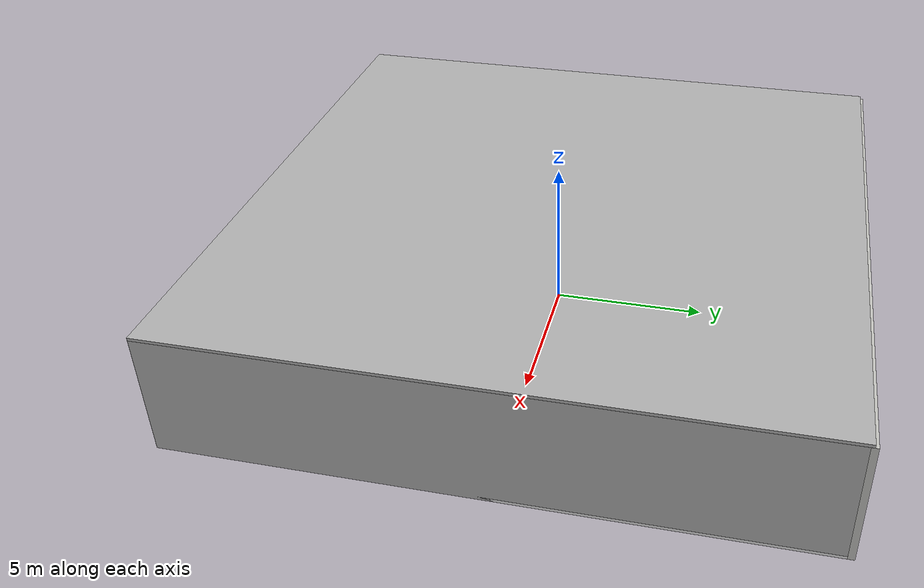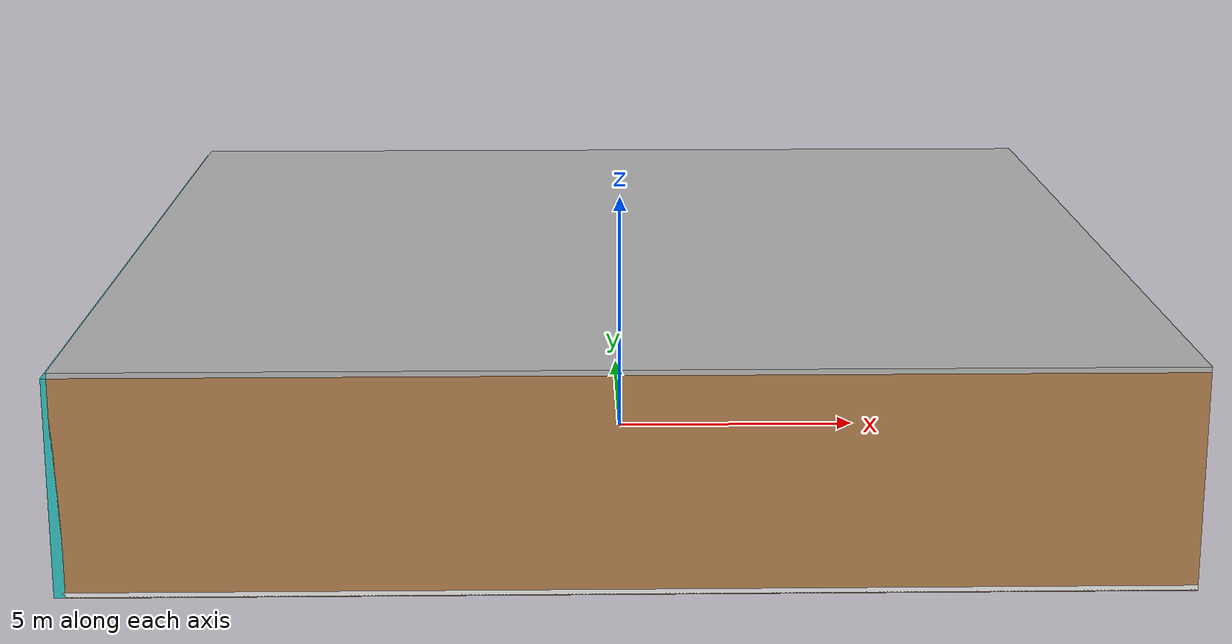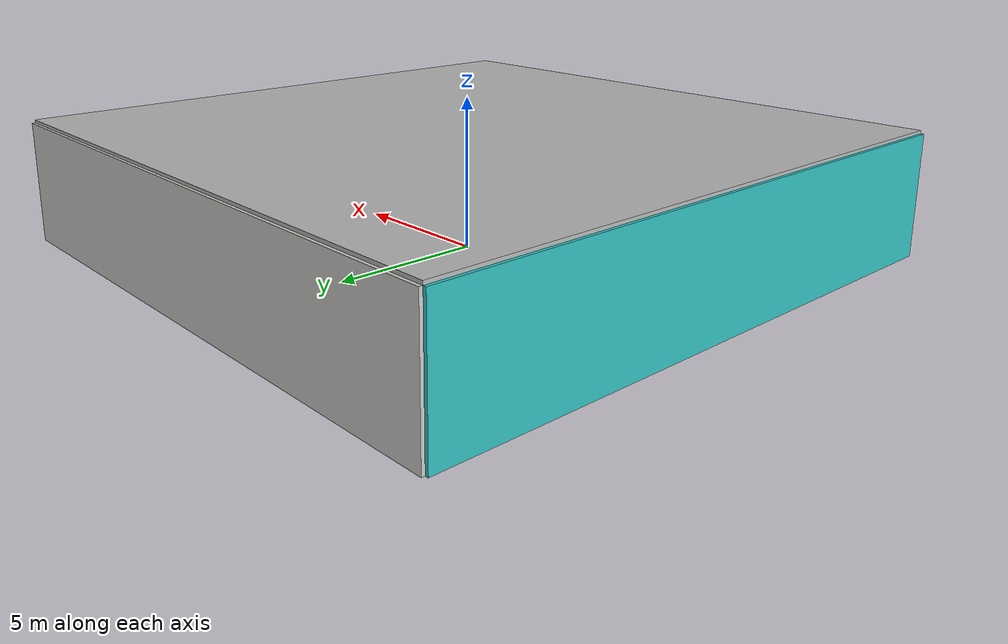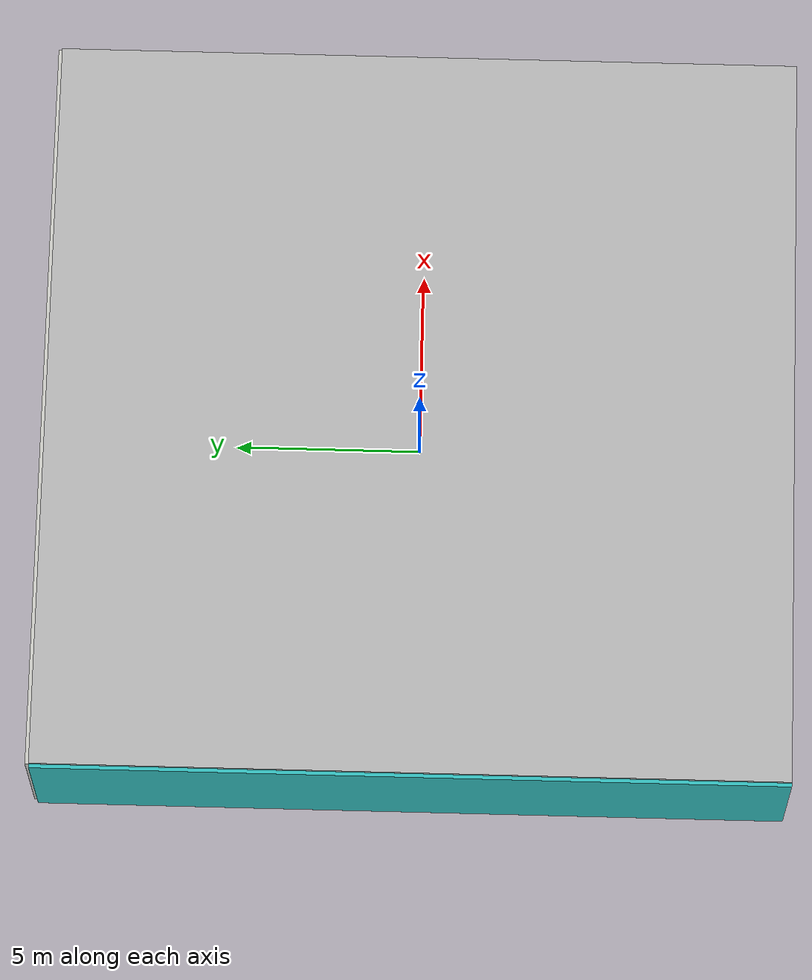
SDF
<sdf version="1.4">
 <world name="default">
  <physics type="ode">
   <max_step_size>0.001</max_step_size>
   <real_time_factor>1</real_time_factor>
   <real_time_update_rate>1000</real_time_update_rate>
   <gravity>0 0 -9.8</gravity>
  </physics>
  <scene><ambient>0.4 0.4 0.4 1</ambient><background>0.7 0.7 0.7 1</background><shadows>1</shadows></scene>
  <model name="Surrounding">
   <static>1</static>
   <link name="Ceiling">
    <collision name="Ceiling_Collision"><geometry><box><size>20 20 0.1</size></box></geometry></collision>
    <visual name="Ceiling_Visual">
     <geometry><box><size>20 20 0.1</size></box></geometry>
     <material>
      <script><uri>file://media/materials/scripts/gazebo.material</uri><name>Gazebo/PioneerBody</name></script>
     </material>
    </visual>
    <pose>0 0 4.05 0 0 0</pose>
   </link>
   <link name="Wall_South">
    <collision name="Wall_South_Collision">
     <geometry><box><size>20 0 4</size></box></geometry>
     <pose>0 0 2 0 -0 0</pose>
    </collision>
    <visual name="Wall_South_Visual">
     <pose>0 0 2 0 -0 0</pose>
     <geometry><box><size>20 0 4</size></box></geometry>
     <material>
      <script><uri>file://media/materials/scripts/gazebo.material</uri><name>Gazebo/WoodFloor</name></script>
     </material>
    </visual>
    <velocity_decay><linear>0</linear><angular>0</angular></velocity_decay>
    <pose>0 -10 0 0 -0 0</pose>
   </link>
   <link name="Wall_East">
    <collision name="Wall_21_Collision">
     <geometry><box><size>20 0 4</size></box></geometry>
     <pose>0 0 2 0 -0 0</pose>
    </collision>
    <visual name="Wall_21_Visual">
     <pose>0 0 2 0 -0 0</pose>
     <geometry><box><size>20 0 4</size></box></geometry>
     <material>
      <script><uri>file://media/materials/scripts/gazebo.material</uri><name>Gazebo/PioneerBody</name></script>
     </material>
    </visual>
    <velocity_decay><linear>0</linear><angular>0</angular></velocity_decay>
    <pose>10 0 0 0 -0 1.5708</pose>
   </link>
   <link name="Wall_North">
    <collision name="Wall_22_Collision">
     <geometry><box><size>20 0.2 4</size></box></geometry>
     <pose>0 0 2 0 -0 0</pose>
    </collision>
    <visual name="Wall_22_Visual">
     <pose>0 0 2 0 -0 0</pose>
     <geometry><box><size>20 0.2 4</size></box></geometry>
     <material>
      <script><uri>file://media/materials/scripts/gazebo.material</uri><name>Gazebo/CeilingTiled</name></script>
     </material>
    </visual>
    <velocity_decay><linear>0</linear><angular>0</angular></velocity_decay>
    <pose>0 10 0 0 -0 0</pose>
   </link>
   <link name="Wall_West">
    <collision name="Wall_23_Collision">
     <geometry><box><size>20 0.2 4</size></box></geometry>
     <pose>0 0 2 0 -0 0</pose>
    </collision>
    <visual name="Wall_23_Visual">
     <pose>0 0 2 0 -0 0</pose>
     <geometry><box><size>20 0.2 4</size></box></geometry>
     <material>
      <script><uri>file://media/materials/scripts/gazebo.material</uri><name>Gazebo/Turquoise</name></script>
     </material>
    </visual>
    <velocity_decay><linear>0</linear><angular>0</angular></velocity_decay>
    <pose>-10 0 0 0 0 -1.5708</pose>
   </link>
   <link name="Ground_link">
    <collision name="collision">
     <pose>0 0 .05 0 -0 0</pose>
     <geometry><box><size>20 20 0.1</size></box></geometry>
    </collision>
    <visual name="visual">
     <pose>0 0 .05 0 -0 0</pose>
     <geometry><box><size>20 20 0.1</size></box></geometry>
     <material>
      <script><uri>file://media/materials/scripts/gazebo.material</uri><name>Gazebo/WhiteGlow</name></script>
     </material>
    </visual>
   </link>
   <static>1</static>
  </model>
  <spherical_coordinates>
   <surface_model>EARTH_WGS84</surface_model>
   <latitude_deg>0</latitude_deg>
   <longitude_deg>0</longitude_deg>
   <elevation>0</elevation>
   <heading_deg>0</heading_deg>
  </spherical_coordinates>
  <light name="lightball_0" type="diffuse">
   <diffuse>0.8 0.8 0.8 1</diffuse>
   <specular>0.2 0.2 0.2 1</specular>
   <attenuation>
    <range>100</range>
    <constant>0.7</constant>
    <linear>0.01</linear>
    <quadratic>0.001</quadratic>
   </attenuation>
   <direction>-0.5 0.1 -0.9</direction>
   <pose>-5.63276798236 6.36358801623 2.59024959872 0 0 0</pose>
  </light>
  <light name="lightball_1" type="diffuse">
   <diffuse>0.8 0.8 0.8 1</diffuse>
   <specular>0.2 0.2 0.2 1</specular>
   <attenuation>
    <range>100</range>
    <constant>0.7</constant>
    <linear>0.01</linear>
    <quadratic>0.001</quadratic>
   </attenuation>
   <direction>-0.5 0.1 -0.9</direction>
   <pose>7.15696000875 -2.87356384565 1.66200663805 0 0 0</pose>
  </light>
  <light name="lightball_2" type="diffuse">
   <diffuse>0.8 0.8 0.8 1</diffuse>
   <specular>0.2 0.2 0.2 1</specular>
   <attenuation>
    <range>100</range>
    <constant>0.7</constant>
    <linear>0.01</linear>
    <quadratic>0.001</quadratic>
   </attenuation>
   <direction>-0.5 0.1 -0.9</direction>
   <pose>-9.81456100655 -4.94211172788 1.95826953814 0 0 0</pose>
  </light>
  <light name="lightball_3" type="diffuse">
   <diffuse>0.8 0.8 0.8 1</diffuse>
   <specular>0.2 0.2 0.2 1</specular>
   <attenuation>
    <range>100</range>
    <constant>0.7</constant>
    <linear>0.01</linear>
    <quadratic>0.001</quadratic>
   </attenuation>
   <direction>-0.5 0.1 -0.9</direction>
   <pose>7.45028137276 -4.96064820122 2.53405126836 0 0 0</pose>
  </light>
  <light name="lightball_4" type="diffuse">
   <diffuse>0.8 0.8 0.8 1</diffuse>
   <specular>0.2 0.2 0.2 1</specular>
   <attenuation>
    <range>100</range>
    <constant>0.7</constant>
    <linear>0.01</linear>
    <quadratic>0.001</quadratic>
   </attenuation>
   <direction>-0.5 0.1 -0.9</direction>
   <pose>6.97756132596 6.14783710898 3.31842389476 0 0 0</pose>
  </light>
  <light name="lightball_5" type="diffuse">
   <diffuse>0.8 0.8 0.8 1</diffuse>
   <specular>0.2 0.2 0.2 1</specular>
   <attenuation>
    <range>100</range>
    <constant>0.7</constant>
    <linear>0.01</linear>
    <quadratic>0.001</quadratic>
   </attenuation>
   <direction>-0.5 0.1 -0.9</direction>
   <pose>9.68747051667 -0.373060444764 1.10839783649 0 0 0</pose>
  </light>
  <light name="lightball_6" type="diffuse">
   <diffuse>0.8 0.8 0.8 1</diffuse>
   <specular>0.2 0.2 0.2 1</specular>
   <attenuation>
    <range>100</range>
    <constant>0.7</constant>
    <linear>0.01</linear>
    <quadratic>0.001</quadratic>
   </attenuation>
   <direction>-0.5 0.1 -0.9</direction>
   <pose>5.18457254812 -9.16450720131 0.84670958037 0 0 0</pose>
  </light>
  <light name="lightball_7" type="diffuse">
   <diffuse>0.8 0.8 0.8 1</diffuse>
   <specular>0.2 0.2 0.2 1</specular>
   <attenuation>
    <range>100</range>
    <constant>0.7</constant>
    <linear>0.01</linear>
    <quadratic>0.001</quadratic>
   </attenuation>
   <direction>-0.5 0.1 -0.9</direction>
   <pose>-2.94594647666 -7.50589863623 2.61453885554 0 0 0</pose>
  </light>
  <include>
   <uri>model://construction_cone</uri>
   <pose>-6.78457263685 -4.5731189293 0 0 0 0.442062608102</pose>
  </include>
  <include><uri>model://table</uri><pose>-4.14618652095 6.86435084314 0 0 0 1.17953404531</pose></include>
  <include><uri>model://cabinet</uri><pose>0.501081173988 3.55515845708 0 0 0 0.463763402459</pose></include>
  <include>
   <uri>model://textured_shapes</uri>
   <pose>7.62509129436 -1.43661373254 0 0 0 0.626514262836</pose>
  </include>
 </world>
</sdf>

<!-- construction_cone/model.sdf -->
<sdf version="1.5">
  <model name="Construction Cone">
    <link name="link">
      <collision name="collision">
        <geometry>
          <mesh>
            <scale>10 10 10</scale>
            <uri>file://isr-testbed/construction_cone/meshes/construction_cone.dae</uri>
          </mesh>
        </geometry>
      </collision>
      <visual name="visual">
        <geometry>
          <mesh>
            <scale>10 10 10</scale>
            <uri>file://isr-testbed/construction_cone/meshes/construction_cone.dae</uri>
          </mesh>
        </geometry>
      </visual>
    </link>
  </model>
</sdf>

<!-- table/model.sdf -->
<sdf version="1.5">
  <model name="table">
    <static>true</static>
    <link name="link">
      <collision name="surface">
        <pose>0 0 1.0 0 0 0</pose>
        <geometry>
          <box>
            <size>1.5 0.8 0.03</size>
          </box>
        </geometry>
        <surface>
          <friction>
            <ode>
              <mu>0.6</mu>
              <mu2>0.6</mu2>
            </ode>
          </friction>
        </surface>
      </collision>
      <visual name="visual1">
        <pose>0 0 1.0 0 0 0</pose>
        <geometry>
          <box>
            <size>1.5 0.8 0.03</size>
          </box>
        </geometry>
        <material>
          <script>
            <uri>model://media/materials/scripts/gazebo.material</uri>
            <name>Gazebo/Wood</name>
          </script>
        </material>
      </visual>
      <collision name="front_left_leg">
        <pose>0.68 0.38 0.5 0 0 0</pose>
        <geometry>
          <cylinder>
            <radius>0.02</radius>
            <length>1.0</length>
          </cylinder>
        </geometry>
      </collision>
      <visual name="front_left_leg">
        <pose>0.68 0.38 0.5 0 0 0</pose>
        <geometry>
          <cylinder>
            <radius>0.02</radius>
            <length>1.0</length>
          </cylinder>
        </geometry>
        <material>
          <script>
            <uri>model://media/materials/scripts/gazebo.material</uri>
            <name>Gazebo/Grey</name>
          </script>
        </material>
      </visual>
      <collision name="front_right_leg">
        <pose>0.68 -0.38 0.5 0 0 0</pose>
        <geometry>
          <cylinder>
            <radius>0.02</radius>
            <length>1.0</length>
          </cylinder>
        </geometry>
      </collision>
      <visual name="front_right_leg">
        <pose>0.68 -0.38 0.5 0 0 0</pose>
        <geometry>
          <cylinder>
            <radius>0.02</radius>
            <length>1.0</length>
          </cylinder>
        </geometry>
        <material>
          <script>
            <uri>model://media/materials/scripts/gazebo.material</uri>
            <name>Gazebo/Grey</name>
          </script>
        </material>
      </visual>
      <collision name="back_right_leg">
        <pose>-0.68 -0.38 0.5 0 0 0</pose>
        <geometry>
          <cylinder>
            <radius>0.02</radius>
            <length>1.0</length>
          </cylinder>
        </geometry>
      </collision>
      <visual name="back_right_leg">
        <pose>-0.68 -0.38 0.5 0 0 0</pose>
        <geometry>
          <cylinder>
            <radius>0.02</radius>
            <length>1.0</length>
          </cylinder>
        </geometry>
        <material>
          <script>
            <uri>model://media/materials/scripts/gazebo.material</uri>
            <name>Gazebo/Grey</name>
          </script>
        </material>
      </visual>
      <collision name="back_left_leg">
        <pose>-0.68 0.38 0.5 0 0 0</pose>
        <geometry>
          <cylinder>
            <radius>0.02</radius>
            <length>1.0</length>
          </cylinder>
        </geometry>
      </collision>
      <visual name="back_left_leg">
        <pose>-0.68 0.38 0.5 0 0 0</pose>
        <geometry>
          <cylinder>
            <radius>0.02</radius>
            <length>1.0</length>
          </cylinder>
        </geometry>
        <material>
          <script>
            <uri>model://media/materials/scripts/gazebo.material</uri>
            <name>Gazebo/Grey</name>
          </script>
        </material>
      </visual>
    </link>
  </model>
</sdf>

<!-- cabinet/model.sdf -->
<sdf version="1.5">
  <model name="cabinet">
    <static>true</static>
    <link name="cabinet_bottom_plate">
      <inertial>
        <pose>0 0 -1 0 0 0</pose>
        <inertia>
          <ixx>2.050000</ixx>
          <ixy>0</ixy>
          <ixz>0</ixz>
          <iyy>2.050000</iyy>
          <iyz>0</iyz>
          <izz>2.050000</izz>
        </inertia>
        <mass>25.000000</mass>
      </inertial>
      <collision name="cabinet_bottom_plate_geom">
        <pose>0 0 0.010000 0 0 0</pose>
        <geometry>
          <box>
            <size>0.450000 0.450000 0.020000</size>
          </box>
        </geometry>
      </collision>
      <visual name="cabinet_bottom_plate_geom_visual">
        <pose>0 0 0.010000 0 0 0</pose>
        <geometry>
          <box>
            <size>0.450000 0.450000 0.020000</size>
          </box>
        </geometry>
        <material>
          <script>
            <uri>model://media/materials/scripts/gazebo.material</uri>
            <name>Gazebo/Wood</name>
          </script>
        </material>
      </visual>
      <collision name="cabinet_bottom_plate_geom_cabinet_back_plate">
        <pose>0.235000 0 0.510000 0 0 0</pose>
        <geometry>
          <box>
            <size>0.020000 0.450000 1.020000</size>
          </box>
        </geometry>
      </collision>
      <visual name="cabinet_bottom_plate_geom_cabinet_back_plate_visual">
        <pose>0.235000 0 0.510000 0 0 0</pose>
        <geometry>
          <box>
            <size>0.020000 0.450000 1.020000</size>
          </box>
        </geometry>
        <material>
          <script>
            <uri>model://media/materials/scripts/gazebo.material</uri>
            <name>Gazebo/Wood</name>
          </script>
        </material>
      </visual>
      <collision name="cabinet_bottom_plate_geom_cabinet_left_plate">
        <pose>0 0.235000 0.510000 0 0 0</pose>
        <geometry>
          <box>
            <size>0.450000 0.020000 1.020000</size>
          </box>
        </geometry>
      </collision>
      <visual name="cabinet_bottom_plate_geom_cabinet_left_plate_visual">
        <pose>0 0.235000 0.510000 0 0 0</pose>
        <geometry>
          <box>
            <size>0.450000 0.020000 1.020000</size>
          </box>
        </geometry>
        <material>
          <script>
            <uri>model://media/materials/scripts/gazebo.material</uri>
            <name>Gazebo/Wood</name>
          </script>
        </material>
      </visual>
      <collision name="cabinet_bottom_plate_geom_cabinet_middle_plate">
        <pose>0 0 0.510000 0 0 0</pose>
        <geometry>
          <box>
            <size>0.450000 0.450000 0.020000</size>
          </box>
        </geometry>
      </collision>
      <visual name="cabinet_bottom_plate_geom_cabinet_middle_plate_visual">
        <pose>0 0 0.510000 0 0 0</pose>
        <geometry>
          <box>
            <size>0.450000 0.450000 0.020000</size>
          </box>
        </geometry>
        <material>
          <script>
            <uri>model://media/materials/scripts/gazebo.material</uri>
            <name>Gazebo/Wood</name>
          </script>
        </material>
      </visual>
      <collision name="cabinet_bottom_plate_geom_cabinet_right_plate">
        <pose>0 -0.235000 0.510000 0 0 0</pose>
        <geometry>
          <box>
            <size>0.450000 0.020000 1.020000</size>
          </box>
        </geometry>
      </collision>
      <visual name="cabinet_bottom_plate_geom_cabinet_right_plate_visual">
        <pose>0 -0.235000 0.510000 0 0 0</pose>
        <geometry>
          <box>
            <size>0.450000 0.020000 1.020000</size>
          </box>
        </geometry>
        <material>
          <script>
            <uri>model://media/materials/scripts/gazebo.material</uri>
            <name>Gazebo/Wood</name>
          </script>
        </material>
      </visual>
      <collision name="cabinet_bottom_plate_geom_cabinet_top_plate">
        <pose>0 0 1.010000 0 0 0</pose>
        <geometry>
          <box>
            <size>0.450000 0.450000 0.020000</size>
          </box>
        </geometry>
      </collision>
      <visual name="cabinet_bottom_plate_geom_cabinet_top_plate_visual">
        <pose>0 0 1.010000 0 0 0</pose>
        <geometry>
          <box>
            <size>0.450000 0.450000 0.020000</size>
          </box>
        </geometry>
        <material>
          <script>
            <uri>model://media/materials/scripts/gazebo.material</uri>
            <name>Gazebo/Wood</name>
          </script>
        </material>
      </visual>
    </link>
  </model>
</sdf>

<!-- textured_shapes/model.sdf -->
<sdf version="1.6">
  <model name="textured_shapes">
    <pose>0 0 0.5 0 0 0</pose>
    <link name="box">
      <pose>0 -1.5 0 0 0 0</pose>
      <collision name="collision">
        <geometry>
          <box>
            <size>1 1 1</size>
          </box>
        </geometry>
      </collision>
      <visual name="visual">
        <geometry>
          <box>
            <size>1 1 1</size>
          </box>
        </geometry>
        <material>
          <script>
            <uri>model://../model_source/models/textured_shapes/materials/scripts</uri>
            <uri>model://../model_source/models/textured_shapes/materials/textures</uri>
            <name>TexturedShape/Squares</name>
          </script>
        </material>
      </visual>
    </link>
    <link name="sphere">
      <collision name="collision">
        <geometry>
          <sphere>
            <radius>0.5</radius>
          </sphere>
        </geometry>
      </collision>
      <visual name="visual">
        <geometry>
          <sphere>
            <radius>0.5</radius>
          </sphere>
        </geometry>
        <material>
          <script>
            <uri>model://../model_source/models/textured_shapes/materials/scripts</uri>
            <uri>model://../model_source/models/textured_shapes/materials/textures</uri>
            <name>TexturedShape/Squares</name>
          </script>
        </material>
      </visual>
    </link>
    <link name="cylinder">
      <pose>0 1.5 0 0 0 0</pose>
      <collision name="collision">
        <geometry>
          <cylinder>
            <radius>0.5</radius>
            <length>1</length>
          </cylinder>
        </geometry>
      </collision>
      <visual name="visual">
        <geometry>
          <cylinder>
            <radius>0.5</radius>
            <length>1</length>
          </cylinder>
        </geometry>
        <material>
          <script>
            <uri>model://../model_source/models/textured_shapes/materials/scripts</uri>
            <uri>model://../model_source/models/textured_shapes/materials/textures</uri>
            <name>TexturedShape/Squares</name>
          </script>
        </material>
      </visual>
    </link>
  </model>
</sdf>
